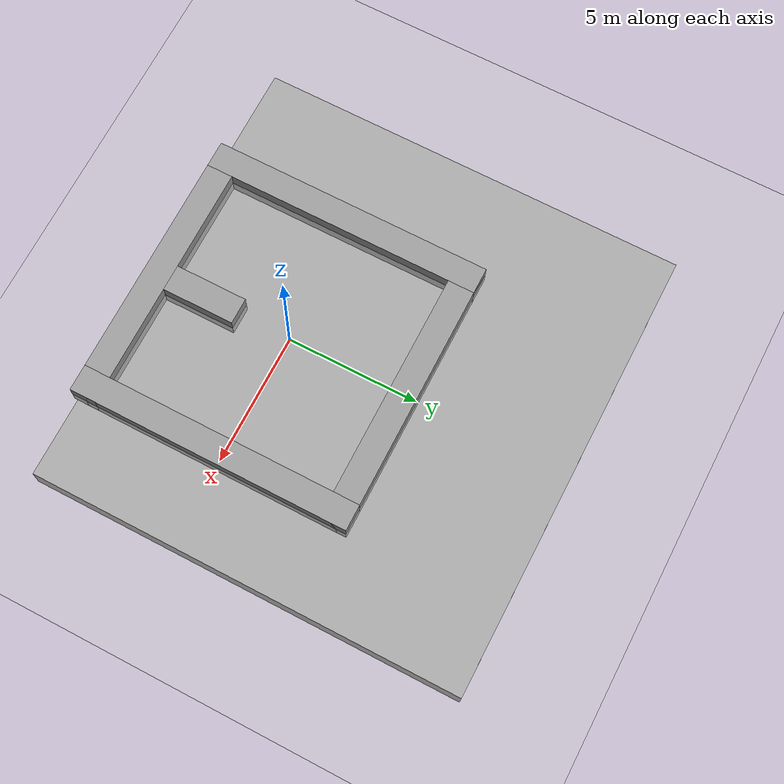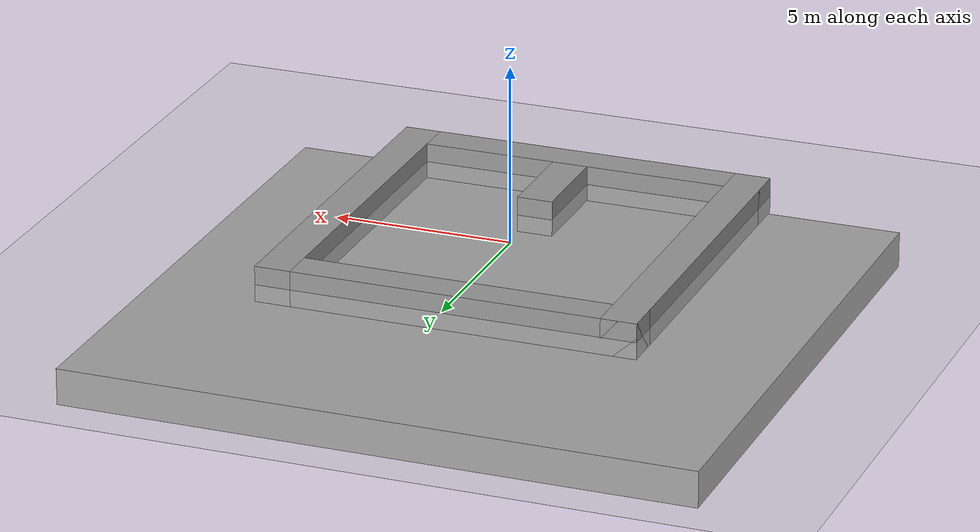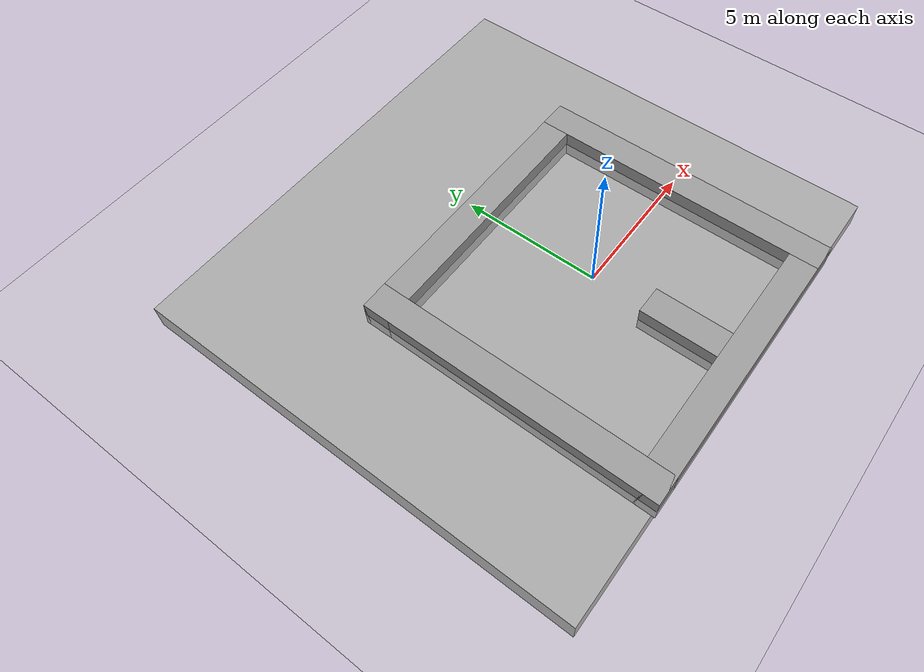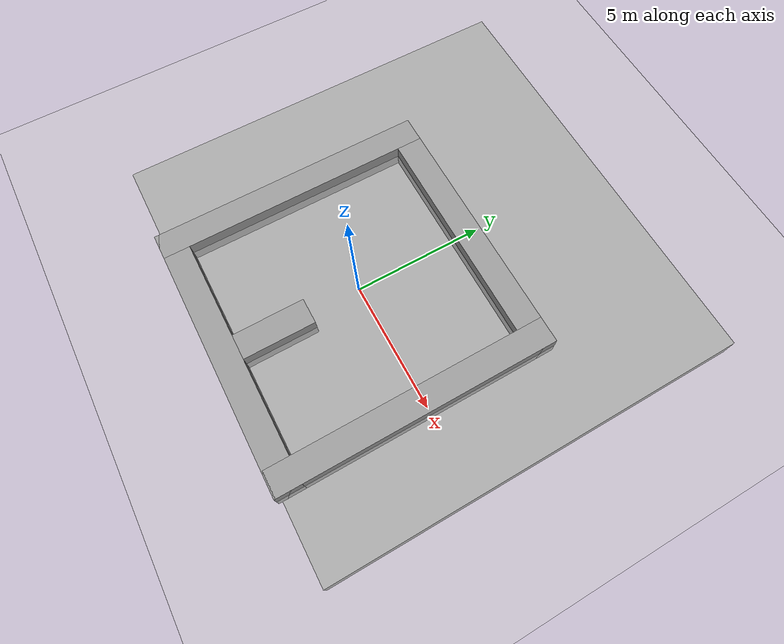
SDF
<sdf version="1.6">
 <world name="default">
  <light name="sun" type="directional">
   <pose>0 0 10 0 -0 0</pose>
   <diffuse>0.8 0.8 0.8 1</diffuse>
   <specular>0.1 0.1 0.1 1</specular>
   <attenuation>
    <range>1000</range>
    <constant>0.9</constant>
    <linear>0.01</linear>
    <quadratic>0.001</quadratic>
   </attenuation>
   <direction>-0.5 0.5 -1</direction>
  </light>
  <model name="ground_plane">
   <static>1</static>
   <link name="link">
    <collision name="collision">
     <geometry><plane><normal>0 0 1</normal><size>100 100</size></plane></geometry>
     <surface><friction><ode><mu>100</mu><mu2>50</mu2></ode></friction></surface>
    </collision>
    <visual name="visual">
     <cast_shadows>0</cast_shadows>
     <geometry><plane><normal>0 0 1</normal><size>100 100</size></plane></geometry>
     <material>
      <script><uri>file://media/materials/scripts/gazebo.material</uri><name>Gazebo/Grey</name></script>
     </material>
    </visual>
   </link>
  </model>
  <gravity>0 0 -9.8</gravity>
  <magnetic_field>6e-06 2.3e-05 -4.2e-05</magnetic_field>
  <atmosphere type="adiabatic"/>
  <physics name="default_physics" default="0" type="ode">
   <max_step_size>0.001</max_step_size>
   <real_time_factor>1</real_time_factor>
   <real_time_update_rate>1000</real_time_update_rate>
  </physics>
  <scene><ambient>0.4 0.4 0.4 1</ambient><background>0.7 0.7 0.7 1</background><shadows>1</shadows></scene>
  <spherical_coordinates>
   <surface_model>EARTH_WGS84</surface_model>
   <latitude_deg>0</latitude_deg>
   <longitude_deg>0</longitude_deg>
   <elevation>0</elevation>
   <heading_deg>0</heading_deg>
  </spherical_coordinates>
  <model name="grand_challenge_world_0">
   <link name="link_clone">
    <pose>4.92864 -2.13259 6.6e-05 0 0 -1.5708</pose>
    <inertial>
     <mass>10.6397</mass>
     <inertia><ixx>101.257</ixx><ixy>0</ixy><ixz>0</ixz><iyy>1.77328</iyy><iyz>0</iyz><izz>101.257</izz></inertia>
    </inertial>
    <visual name="visual">
     <geometry><box><size>1 10.6397 1</size></box></geometry>
     <material>
      <script><name>Gazebo/Grey</name><uri>file://media/materials/scripts/gazebo.material</uri></script>
      <ambient>0.3 0.3 0.3 1</ambient>
      <diffuse>0.7 0.7 0.7 1</diffuse>
      <specular>0.01 0.01 0.01 1</specular>
      <emissive>0 0 0 1</emissive>
      <shader type="pixel"/>
     </material>
    </visual>
    <collision name="collision">
     <geometry><box><size>1 10.6397 1</size></box></geometry>
     <surface>
      <friction>
       <ode><mu>1</mu><mu2>1</mu2><fdir1>0 0 0</fdir1><slip1>0</slip1><slip2>0</slip2></ode>
       <torsional>
        <coefficient>1</coefficient>
        <patch_radius>0</patch_radius>
        <surface_radius>0</surface_radius>
        <use_patch_radius>1</use_patch_radius>
        <ode><slip>0</slip></ode>
       </torsional>
      </friction>
      <bounce><restitution_coefficient>0</restitution_coefficient><threshold>1e+06</threshold></bounce>
      <contact>
       <collide_without_contact>0</collide_without_contact>
       <collide_without_contact_bitmask>1</collide_without_contact_bitmask>
       <collide_bitmask>1</collide_bitmask>
       <ode>
        <soft_cfm>0</soft_cfm>
        <soft_erp>0.2</soft_erp>
        <kp>1e+13</kp>
        <kd>1</kd>
        <max_vel>0.01</max_vel>
        <min_depth>0</min_depth>
       </ode>
       <bullet>
        <split_impulse>1</split_impulse>
        <split_impulse_penetration_threshold>-0.01</split_impulse_penetration_threshold>
        <soft_cfm>0</soft_cfm>
        <soft_erp>0.2</soft_erp>
        <kp>1e+13</kp>
        <kd>1</kd>
       </bullet>
      </contact>
     </surface>
    </collision>
   </link>
   <link name="link_clone_0">
    <pose>9.74849 2.73302 0.00012 1e-05 -0 0</pose>
    <inertial>
     <mass>10.7312</mass>
     <inertia><ixx>103.878</ixx><ixy>0</ixy><ixz>0</ixz><iyy>1.78854</iyy><iyz>0</iyz><izz>103.878</izz></inertia>
    </inertial>
    <visual name="visual">
     <geometry><box><size>1 10.7312 1</size></box></geometry>
     <material>
      <script><name>Gazebo/Grey</name><uri>file://media/materials/scripts/gazebo.material</uri></script>
      <ambient>0.3 0.3 0.3 1</ambient>
      <diffuse>0.7 0.7 0.7 1</diffuse>
      <specular>0.01 0.01 0.01 1</specular>
      <emissive>0 0 0 1</emissive>
      <shader type="pixel"/>
     </material>
    </visual>
    <collision name="collision">
     <geometry><box><size>1 10.7312 1</size></box></geometry>
     <surface>
      <friction>
       <ode><mu>1</mu><mu2>1</mu2><fdir1>0 0 0</fdir1><slip1>0</slip1><slip2>0</slip2></ode>
       <torsional>
        <coefficient>1</coefficient>
        <patch_radius>0</patch_radius>
        <surface_radius>0</surface_radius>
        <use_patch_radius>1</use_patch_radius>
        <ode><slip>0</slip></ode>
       </torsional>
      </friction>
      <bounce><restitution_coefficient>0</restitution_coefficient><threshold>1e+06</threshold></bounce>
      <contact>
       <collide_without_contact>0</collide_without_contact>
       <collide_without_contact_bitmask>1</collide_without_contact_bitmask>
       <collide_bitmask>1</collide_bitmask>
       <ode>
        <soft_cfm>0</soft_cfm>
        <soft_erp>0.2</soft_erp>
        <kp>1e+13</kp>
        <kd>1</kd>
        <max_vel>0.01</max_vel>
        <min_depth>0</min_depth>
       </ode>
       <bullet>
        <split_impulse>1</split_impulse>
        <split_impulse_penetration_threshold>-0.01</split_impulse_penetration_threshold>
        <soft_cfm>0</soft_cfm>
        <soft_erp>0.2</soft_erp>
        <kp>1e+13</kp>
        <kd>1</kd>
       </bullet>
      </contact>
     </surface>
    </collision>
   </link>
   <link name="link_clone_0_clone">
    <pose>0.108791 2.733 0.00012 1e-05 -0 0</pose>
    <inertial>
     <mass>10.7312</mass>
     <inertia><ixx>103.878</ixx><ixy>0</ixy><ixz>0</ixz><iyy>1.78854</iyy><iyz>0</iyz><izz>103.878</izz></inertia>
    </inertial>
    <visual name="visual">
     <geometry><box><size>1 10.7312 1</size></box></geometry>
     <material>
      <script><name>Gazebo/Grey</name><uri>file://media/materials/scripts/gazebo.material</uri></script>
      <ambient>0.3 0.3 0.3 1</ambient>
      <diffuse>0.7 0.7 0.7 1</diffuse>
      <specular>0.01 0.01 0.01 1</specular>
      <emissive>0 0 0 1</emissive>
      <shader type="pixel"/>
     </material>
    </visual>
    <collision name="collision">
     <geometry><box><size>1 10.7312 1</size></box></geometry>
     <surface>
      <friction>
       <ode><mu>1</mu><mu2>1</mu2><fdir1>0 0 0</fdir1><slip1>0</slip1><slip2>0</slip2></ode>
       <torsional>
        <coefficient>1</coefficient>
        <patch_radius>0</patch_radius>
        <surface_radius>0</surface_radius>
        <use_patch_radius>1</use_patch_radius>
        <ode><slip>0</slip></ode>
       </torsional>
      </friction>
      <bounce><restitution_coefficient>0</restitution_coefficient><threshold>1e+06</threshold></bounce>
      <contact>
       <collide_without_contact>0</collide_without_contact>
       <collide_without_contact_bitmask>1</collide_without_contact_bitmask>
       <collide_bitmask>1</collide_bitmask>
       <ode>
        <soft_cfm>0</soft_cfm>
        <soft_erp>0.2</soft_erp>
        <kp>1e+13</kp>
        <kd>1</kd>
        <max_vel>0.01</max_vel>
        <min_depth>0</min_depth>
       </ode>
       <bullet>
        <split_impulse>1</split_impulse>
        <split_impulse_penetration_threshold>-0.01</split_impulse_penetration_threshold>
        <soft_cfm>0</soft_cfm>
        <soft_erp>0.2</soft_erp>
        <kp>1e+13</kp>
        <kd>1</kd>
       </bullet>
      </contact>
     </surface>
    </collision>
   </link>
   <link name="link_clone_1">
    <pose>5.04311 -0.677258 7.2e-05 1e-05 -0 0</pose>
    <inertial>
     <mass>3.57281</mass>
     <inertia><ixx>4.09827</ixx><ixy>0</ixy><ixz>0</ixz><iyy>0.595469</iyy><iyz>0</iyz><izz>4.09827</izz></inertia>
    </inertial>
    <visual name="visual">
     <geometry><box><size>1 3.57281 1</size></box></geometry>
     <material>
      <script><name>Gazebo/Grey</name><uri>file://media/materials/scripts/gazebo.material</uri></script>
      <ambient>0.3 0.3 0.3 1</ambient>
      <diffuse>0.7 0.7 0.7 1</diffuse>
      <specular>0.01 0.01 0.01 1</specular>
      <emissive>0 0 0 1</emissive>
      <shader type="pixel"/>
     </material>
    </visual>
    <collision name="collision">
     <geometry><box><size>1 3.57281 1</size></box></geometry>
     <surface>
      <friction>
       <ode><mu>1</mu><mu2>1</mu2><fdir1>0 0 0</fdir1><slip1>0</slip1><slip2>0</slip2></ode>
       <torsional>
        <coefficient>1</coefficient>
        <patch_radius>0</patch_radius>
        <surface_radius>0</surface_radius>
        <use_patch_radius>1</use_patch_radius>
        <ode><slip>0</slip></ode>
       </torsional>
      </friction>
      <bounce><restitution_coefficient>0</restitution_coefficient><threshold>1e+06</threshold></bounce>
      <contact>
       <collide_without_contact>0</collide_without_contact>
       <collide_without_contact_bitmask>1</collide_without_contact_bitmask>
       <collide_bitmask>1</collide_bitmask>
       <ode>
        <soft_cfm>0</soft_cfm>
        <soft_erp>0.2</soft_erp>
        <kp>1e+13</kp>
        <kd>1</kd>
        <max_vel>0.01</max_vel>
        <min_depth>0</min_depth>
       </ode>
       <bullet>
        <split_impulse>1</split_impulse>
        <split_impulse_penetration_threshold>-0.01</split_impulse_penetration_threshold>
        <soft_cfm>0</soft_cfm>
        <soft_erp>0.2</soft_erp>
        <kp>1e+13</kp>
        <kd>1</kd>
       </bullet>
      </contact>
     </surface>
    </collision>
   </link>
   <link name="link_clone_2">
    <pose>4.56961 5.73042 -0.999944 0 -0 0</pose>
    <inertial>
     <mass>286.59</mass>
     <inertia><ixx>6508.91</ixx><ixy>0</ixy><ixz>0</ixz><iyy>7247.66</iyy><iyz>0</iyz><izz>13708.8</izz></inertia>
    </inertial>
    <visual name="visual">
     <geometry><box><size>17.3917 16.4785 1</size></box></geometry>
     <material>
      <script><name>Gazebo/Grey</name><uri>file://media/materials/scripts/gazebo.material</uri></script>
      <ambient>0.3 0.3 0.3 1</ambient>
      <diffuse>0.7 0.7 0.7 1</diffuse>
      <specular>0.01 0.01 0.01 1</specular>
      <emissive>0 0 0 1</emissive>
      <shader type="pixel"/>
     </material>
    </visual>
    <collision name="collision">
     <geometry><box><size>17.3917 16.4785 1</size></box></geometry>
     <surface>
      <friction>
       <ode><mu>1</mu><mu2>1</mu2><fdir1>0 0 0</fdir1><slip1>0</slip1><slip2>0</slip2></ode>
       <torsional>
        <coefficient>1</coefficient>
        <patch_radius>0</patch_radius>
        <surface_radius>0</surface_radius>
        <use_patch_radius>1</use_patch_radius>
        <ode><slip>0</slip></ode>
       </torsional>
      </friction>
      <bounce><restitution_coefficient>0</restitution_coefficient><threshold>1e+06</threshold></bounce>
      <contact>
       <collide_without_contact>0</collide_without_contact>
       <collide_without_contact_bitmask>1</collide_without_contact_bitmask>
       <collide_bitmask>1</collide_bitmask>
       <ode>
        <soft_cfm>0</soft_cfm>
        <soft_erp>0.2</soft_erp>
        <kp>1e+13</kp>
        <kd>1</kd>
        <max_vel>0.01</max_vel>
        <min_depth>0</min_depth>
       </ode>
       <bullet>
        <split_impulse>1</split_impulse>
        <split_impulse_penetration_threshold>-0.01</split_impulse_penetration_threshold>
        <soft_cfm>0</soft_cfm>
        <soft_erp>0.2</soft_erp>
        <kp>1e+13</kp>
        <kd>1</kd>
       </bullet>
      </contact>
     </surface>
    </collision>
   </link>
   <link name="link_clone_clone">
    <pose>4.92864 7.59858 6.6e-05 0 0 -1.5708</pose>
    <inertial>
     <mass>10.6397</mass>
     <inertia><ixx>101.257</ixx><ixy>0</ixy><ixz>0</ixz><iyy>1.77328</iyy><iyz>0</iyz><izz>101.257</izz></inertia>
    </inertial>
    <visual name="visual">
     <geometry><box><size>1 10.6397 1</size></box></geometry>
     <material>
      <script><name>Gazebo/Grey</name><uri>file://media/materials/scripts/gazebo.material</uri></script>
      <ambient>0.3 0.3 0.3 1</ambient>
      <diffuse>0.7 0.7 0.7 1</diffuse>
      <specular>0.01 0.01 0.01 1</specular>
      <emissive>0 0 0 1</emissive>
      <shader type="pixel"/>
     </material>
    </visual>
    <collision name="collision">
     <geometry><box><size>1 10.6397 1</size></box></geometry>
     <surface>
      <friction>
       <ode><mu>1</mu><mu2>1</mu2><fdir1>0 0 0</fdir1><slip1>0</slip1><slip2>0</slip2></ode>
       <torsional>
        <coefficient>1</coefficient>
        <patch_radius>0</patch_radius>
        <surface_radius>0</surface_radius>
        <use_patch_radius>1</use_patch_radius>
        <ode><slip>0</slip></ode>
       </torsional>
      </friction>
      <bounce><restitution_coefficient>0</restitution_coefficient><threshold>1e+06</threshold></bounce>
      <contact>
       <collide_without_contact>0</collide_without_contact>
       <collide_without_contact_bitmask>1</collide_without_contact_bitmask>
       <collide_bitmask>1</collide_bitmask>
       <ode>
        <soft_cfm>0</soft_cfm>
        <soft_erp>0.2</soft_erp>
        <kp>1e+13</kp>
        <kd>1</kd>
        <max_vel>0.01</max_vel>
        <min_depth>0</min_depth>
       </ode>
       <bullet>
        <split_impulse>1</split_impulse>
        <split_impulse_penetration_threshold>-0.01</split_impulse_penetration_threshold>
        <soft_cfm>0</soft_cfm>
        <soft_erp>0.2</soft_erp>
        <kp>1e+13</kp>
        <kd>1</kd>
       </bullet>
      </contact>
     </surface>
    </collision>
   </link>
   <static>1</static>
   <pose>-4.98489 -3.09265 0 0 -0 0</pose>
  </model>
 </world>
</sdf>
